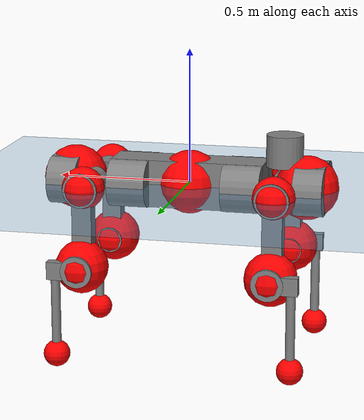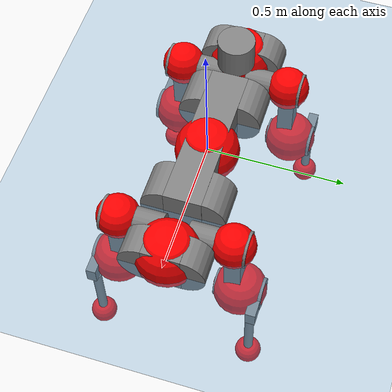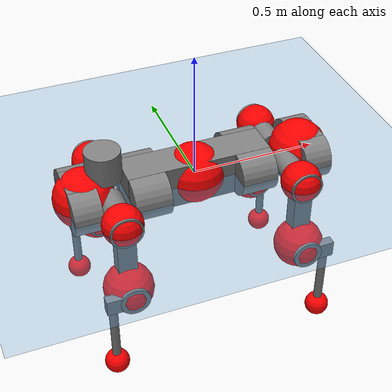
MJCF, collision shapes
<mujoco model="anymal_c">
  <compiler angle="radian" assetdir="assets" balanceinertia="true" inertiafromgeom="false"/>

  <option timestep="0.005" density="1.2" viscosity="2e-05"/>

  <size nkey="1"/>

  <visual>
    <quality shadowsize="8192"/>
    <map shadowclip="0.5"/>
  </visual>

  <default>
    <default class="/">
      <material specular="0" shininess="0.25"/>
      <geom contype="0" conaffinity="0" group="1" solref="-1000 -80"/>
      <site size="0.01 0.005 0.005" group="5"/>
      <general forcelimited="true" forcerange="-80 80" biastype="affine" gainprm="80" biasprm="0 -80 -2"/>
      <default class="anymal_c">
        <joint armature="0.01" damping="0.01" frictionloss="0.1"/>
        <default class="visual">
          <geom type="mesh" group="2"/>
          <default class="visual_zflip"/>
        </default>
        <default class="collision">
          <geom type="cylinder" group="3"/>
          <default class="foot">
            <geom size="0.03 0 0" type="sphere" condim="6" priority="1" friction="0.8 0.02 0.01" solimp="0.015 1 0.03"/>
          </default>
        </default>
      </default>
      <default class="reward_collision_sphere">
        <geom group="5" rgba="1 0 0 1"/>
      </default>
    </default>
  </default>

  <asset>
    <texture type="skybox" colorspace="auto" name="//unnamed_texture_0" builtin="gradient" rgb1="0.95 0.95 0.95" rgb2="0.95 0.95 0.95" width="100" height="600"/>
    <texture type="2d" colorspace="auto" name="texplane" builtin="checker" rgb1="0.345 0.575 0.748" rgb2="0.345 0.575 0.748" markrgb="1 1 1" width="512" height="512"/>
    <texture type="2d" colorspace="linear" name="base" file="base.png"/>
    <texture type="2d" colorspace="linear" name="top_shell" file="top_shell.png"/>
    <texture type="2d" colorspace="linear" name="bottom_shell" file="bottom_shell.png"/>
    <texture type="2d" colorspace="linear" name="remote" file="remote.png"/>
    <texture type="2d" colorspace="linear" name="hatch" file="hatch.png"/>
    <texture type="2d" colorspace="linear" name="handle" file="handle.png"/>
    <texture type="2d" colorspace="linear" name="face" file="face.png"/>
    <texture type="2d" colorspace="linear" name="battery" file="battery.png"/>
    <texture type="2d" colorspace="linear" name="lidar_cage" file="lidar_cage.png"/>
    <texture type="2d" colorspace="linear" name="depth_camera" file="depth_camera.png"/>
    <texture type="2d" colorspace="linear" name="wide_angle_camera" file="wide_angle_camera.png"/>
    <texture type="2d" colorspace="linear" name="lidar" file="lidar.png"/>
    <texture type="2d" colorspace="linear" name="drive" file="drive.png"/>
    <texture type="2d" colorspace="linear" name="hip_l" file="hip_l.png"/>
    <texture type="2d" colorspace="linear" name="shank_l" file="shank_l.png"/>
    <texture type="2d" colorspace="linear" name="foot" file="foot.png"/>
    <texture type="2d" colorspace="linear" name="thigh" file="thigh.png"/>
    <texture type="2d" colorspace="linear" name="shank_r" file="shank_r.png"/>
    <texture type="2d" colorspace="linear" name="hip_r" file="hip_r.png"/>
    <material name="MatPlane" class="/" texture="texplane" texuniform="true" texrepeat="2 2" specular="0.9" shininess="0.5"/>
    <material name="black_plastic" class="/" rgba="0.007 0.007 0.007 1"/>
    <material name="green" class="/" rgba="0.052 0.178 0.033 1"/>
    <material name="red" class="/" rgba="0.178 0.006 0.005 1"/>
    <material name="yellow" class="/" rgba="0.178 0.119 0.006 1"/>
    <material name="lwl" class="/" rgba="0.8 0.8 0.8 1"/>
    <material name="base" class="/" texture="base"/>
    <material name="top_shell" class="/" texture="top_shell"/>
    <material name="bottom_shell" class="/" texture="bottom_shell"/>
    <material name="hip_l" class="/" texture="hip_l"/>
    <material name="thigh" class="/" texture="thigh"/>
    <material name="shank_l" class="/" texture="shank_l"/>
    <material name="foot" class="/" texture="foot"/>
    <material name="hip_r" class="/" texture="hip_r"/>
    <material name="shank" class="/" texture="shank_r"/>
    <material name="hatch" class="/" texture="hatch"/>
    <material name="remote" class="/" texture="remote"/>
    <material name="handle" class="/" texture="handle"/>
    <material name="face" class="/" texture="face"/>
    <material name="depth_camera" class="/" texture="depth_camera"/>
    <material name="wide_angle_camera" class="/" texture="wide_angle_camera"/>
    <material name="battery" class="/" texture="battery"/>
    <material name="lidar_cage" class="/" texture="lidar_cage"/>
    <material name="lidar" class="/" texture="lidar"/>
    <material name="drive" class="/" texture="drive"/>
    <mesh name="base_0" class="/" file="base_0.obj"/>
    <mesh name="base_1" class="/" file="base_1.obj"/>
    <mesh name="base_2" class="/" file="base_2.obj"/>
    <mesh name="base_3" class="/" file="base_3.obj"/>
    <mesh name="base_4" class="/" file="base_4.obj"/>
    <mesh name="base_5" class="/" file="base_5.obj"/>
    <mesh name="top_shell" class="/" file="top_shell.obj"/>
    <mesh name="bottom_shell" class="/" file="bottom_shell.obj"/>
    <mesh name="remote" class="/" file="remote.obj"/>
    <mesh name="handle" class="/" file="handle.obj"/>
    <mesh name="face" class="/" file="face.obj"/>
    <mesh name="wide_angle_camera" class="/" file="wide_angle_camera.obj"/>
    <mesh name="depth_camera" class="/" file="depth_camera.obj"/>
    <mesh name="battery" class="/" file="battery.obj"/>
    <mesh name="lidar_cage" class="/" file="lidar_cage.obj"/>
    <mesh name="lidar" class="/" file="lidar.obj"/>
    <mesh name="drive" class="/" file="drive.obj"/>
    <mesh name="hip_l" class="/" file="hip_l.obj"/>
    <mesh name="thigh" class="/" file="thigh.obj"/>
    <mesh name="shank_l" class="/" file="shank_l.obj"/>
    <mesh name="foot" class="/" file="foot.obj"/>
    <mesh name="hip_r" class="/" file="hip_r.obj"/>
    <mesh name="hatch" class="/" file="hatch.obj"/>
    <mesh name="shank_r" class="/" file="shank_r.obj"/>
  </asset>

  <worldbody>
    <geom name="floor" class="/" size="100 100 0.125" type="plane" group="0" material="MatPlane"/>
    <light name="toplight_shadow" class="/" pos="0 0 5" dir="0.0990148 0.0990148 -0.990148" type="directional" ambient="0.04 0.04 0.04" diffuse="0.55 0.55 0.55" specular="0.12 0.12 0.12"/>
    <light name="toplight_fill" class="/" pos="0 0 5" dir="0.0990148 0.0990148 -0.990148" type="directional" castshadow="false" ambient="0.04 0.04 0.04" diffuse="0.3 0.3 0.3" specular="0.08 0.08 0.08"/>
    <body name="trunk" childclass="anymal_c" pos="-0.000215598 -0.000849056 0.000507942" quat="1 -2.10646e-07 -2.62542e-06 7.9536e-06">
      <inertial pos="0.00168245 -0.00135186 0.0507429" quat="0.508448 0.493122 0.495654 0.502631" mass="18.0155" diaginertia="0.576055 0.491413 0.23742"/>
      <joint name="//unnamed_joint_0" type="free" armature="0" damping="0" frictionloss="0"/>
      <geom name="//unnamed_geom_1" class="visual" material="green" mesh="base_0"/>
      <geom name="//unnamed_geom_2" class="visual" material="yellow" mesh="base_1"/>
      <geom name="//unnamed_geom_3" class="visual" material="red" mesh="base_2"/>
      <geom name="//unnamed_geom_4" class="visual" material="black_plastic" mesh="base_3"/>
      <geom name="//unnamed_geom_5" class="visual" material="lwl" mesh="base_4"/>
      <geom name="//unnamed_geom_6" class="visual" material="base" mesh="base_5"/>
      <geom name="trunk_1" class="collision" size="0.285866 0.069002 0.0887169" type="box"/>
      <geom name="trunk_2" class="collision" size="0.0887169 0.0714664" pos="0.21352 0.0667158 0" quat="0.707107 0 0.707107 0"/>
      <geom name="trunk_3" class="collision" size="0.0887169 0.0714664" pos="-0.21352 0.0667158 0" quat="0.707107 0 0.707107 0"/>
      <geom name="trunk_4" class="collision" size="0.0887169 0.0714664" pos="0.21352 -0.0667158 0" quat="0.707107 0 0.707107 0"/>
      <geom name="trunk_5" class="collision" size="0.0887169 0.0714664" pos="-0.21352 -0.0667158 0" quat="0.707107 0 0.707107 0"/>
      <geom name="//unnamed_geom_12" class="visual" material="top_shell" mesh="top_shell"/>
      <geom name="//unnamed_geom_13" class="visual" material="bottom_shell" mesh="bottom_shell"/>
      <geom name="//unnamed_geom_14" class="visual" material="remote" mesh="remote"/>
      <geom name="//unnamed_geom_15" class="visual" material="handle" mesh="handle"/>
      <geom name="//unnamed_geom_16" class="visual" pos="0.406916 0 0" quat="1 0 0 0" material="face" mesh="face"/>
      <geom name="trunk_6" class="collision" size="0.0542159 0.069002 0.0887169" pos="0.460909 0 0" type="box"/>
      <geom name="//unnamed_geom_18" class="collision" size="0.0887169 0.0542159" pos="0.460909 0.0667158 0" quat="0.707107 0 0.707107 0"/>
      <geom name="//unnamed_geom_19" class="collision" size="0.0887169 0.0542159" pos="0.460909 -0.0667158 0" quat="0.707107 0 0.707107 0"/>
      <geom name="//unnamed_geom_20" class="visual" pos="0.453205 0 -0.030165" quat="0.965926 0 0.258819 0" material="depth_camera" mesh="depth_camera"/>
      <geom name="//unnamed_geom_21" class="visual" pos="0.503613 0 0.015306" material="wide_angle_camera" mesh="wide_angle_camera"/>
      <geom name="//unnamed_geom_22" class="visual_zflip" pos="-0.406916 0 0" quat="0 0 0 1" material="face" mesh="face"/>
      <geom name="trunk_7" class="collision" size="0.0542159 0.069002 0.0887169" pos="-0.460909 0 0" quat="0 0 0 1" type="box"/>
      <geom name="//unnamed_geom_24" class="collision" size="0.0887169 0.0542159" pos="-0.460909 -0.0667158 0" quat="0 -0.707107 0 0.707107"/>
      <geom name="//unnamed_geom_25" class="collision" size="0.0887169 0.0542159" pos="-0.460909 0.0667158 0" quat="0 -0.707107 0 0.707107"/>
      <geom name="//unnamed_geom_26" class="visual" pos="-0.453205 0 -0.030165" quat="0 -0.258819 0 0.965926" material="depth_camera" mesh="depth_camera"/>
      <geom name="//unnamed_geom_27" class="visual_zflip" pos="-0.503613 0 0.015306" quat="0 0 0 1" material="wide_angle_camera" mesh="wide_angle_camera"/>
      <geom name="//unnamed_geom_28" class="visual" material="battery" mesh="battery"/>
      <geom name="//unnamed_geom_29" class="visual" pos="0 0.0724988 0.0293924" quat="0.683013 -0.183013 0.183013 0.683013" material="depth_camera" mesh="depth_camera"/>
      <geom name="//unnamed_geom_30" class="visual" pos="0 -0.0724988 0.0293924" quat="0.683013 0.183013 0.183013 -0.683013" material="depth_camera" mesh="depth_camera"/>
      <geom name="//unnamed_geom_31" class="visual" pos="-0.35734 0 0.0751497" quat="1 0 0 0" material="lidar_cage" mesh="lidar_cage"/>
      <geom name="trunk_8" class="collision" size="0.069002 0.0591446" pos="-0.35734 0 0.136496"/>
      <geom name="//unnamed_geom_33" class="visual" pos="-0.35734 -1.1244e-05 0.145392" quat="0.707107 0 0 -0.707107" material="lidar" mesh="lidar"/>
      <geom name="//unnamed_geom_34" class="visual" pos="0.294413 0.0991452 -1.1965e-09" quat="0.258819 0.965926 0 0" material="drive" mesh="drive"/>
      <geom name="//unnamed_geom_35" class="visual" pos="0.294413 -0.0991452 1.1965e-09" quat="0.258819 -0.965926 0 0" material="drive" mesh="drive"/>
      <geom name="//unnamed_geom_36" class="visual" pos="-0.294413 0.0991452 1.1965e-09" quat="0 0 0.965926 -0.258819" material="drive" mesh="drive"/>
      <geom name="//unnamed_geom_37" class="visual" pos="-0.294413 -0.0991452 -1.1965e-09" quat="0 0 -0.965926 -0.258819" material="drive" mesh="drive"/>
      <geom name="//unnamed_geom_38" class="visual" pos="0.113877 0 0.0746385" quat="1 0 0 0" material="hatch" mesh="hatch"/>
      <geom name="//unnamed_geom_39" class="reward_collision_sphere" size="0.118289"/>
      <geom name="//unnamed_geom_40" class="reward_collision_sphere" size="0.118289" pos="0.441766 0 0"/>
      <geom name="//unnamed_geom_41" class="reward_collision_sphere" size="0.118289" pos="-0.441766 0 0"/>
      <site name="imu" pos="0.247666 0.00559815 0.0431128" size="0.00985743"/>
      <camera name="track" pos="0 -1.90617 0" quat="0.707107 0.707107 0 0" mode="trackcom"/>
      <camera name="ego_camera" pos="0.441766 0 -0.0408978" quat="-0.5 -0.5 0.5 0.5"/>
      <body name="LF_HIP" pos="0.294967 0.101984 0.00173731" quat="0.259182 0.965829 -0.000268532 -1.35269e-05">
        <inertial pos="0.05528 -0.0144299 -0.0092116" quat="-0.126287 0.709163 -0.137254 0.679927" mass="2.64643" diaginertia="0.00533409 0.00383429 0.0037043"/>
        <joint name="LF_HAA" pos="0 0 0" axis="0.999999 0.00159154 0.000460531" range="-0.671809 0.474034" armature="0.00978493" damping="0.00322786" frictionloss="0.0991783"/>
        <geom name="//unnamed_geom_42" class="visual" pos="0 -7.03849e-05 1.15607e-05" quat="0.258819 -0.965926 0 0" material="hip_l" mesh="hip_l"/>
        <geom name="//unnamed_geom_43" class="visual" pos="0.058804 -0.0709014 -0.041448" quat="0.183013 -0.683013 0.683013 0.183013" material="drive" mesh="drive"/>
        <geom name="//unnamed_geom_44" class="collision" size="0.0492872 0.069002" pos="0.058804 -0.0113987 -0.00705998" quat="-0.353553 -0.612372 0.612372 -0.353553"/>
        <body name="LF_THIGH" pos="0.0592205 -0.0674118 -0.0426833" quat="0.182987 -0.68301 0.683082 0.18279">
          <inertial pos="0.0309153 -0.000207398 -0.250841" quat="0.992325 -0.0055077 -0.0873231 0.0873814" mass="2.94118" diaginertia="0.0277622 0.0234759 0.00472479"/>
          <joint name="LF_HFE" pos="0 0 0" axis="0.999984 -0.00506791 -0.00238076" range="-3.16145 3.1764" armature="0.0104246" damping="0.00593099" frictionloss="0.093569"/>
          <geom name="//unnamed_geom_45" class="visual" pos="0.000569425 8.97281e-07 0" quat="0.707107 0 0 -0.707107" material="thigh" mesh="thigh"/>
          <geom name="//unnamed_geom_46" class="collision" size="0.0640733 0.0394297" pos="0.0392681 0 0" quat="0.5 0.5 -0.5 -0.5"/>
          <geom name="//unnamed_geom_47" class="collision" size="0.0369654 0.0295723 0.139299" pos="0.0294511 0 -0.144486" quat="0.707107 0 0 -0.707107" type="box"/>
          <geom name="//unnamed_geom_48" class="visual" pos="0.0984648 0 -0.291397" quat="1 0 0 0" material="drive" mesh="drive"/>
          <geom name="//unnamed_geom_49" class="collision" size="0.0492872 0.069002" pos="0.0297456 0 -0.291397" quat="0.707107 0 0.707107 0"/>
          <geom name="//unnamed_geom_50" class="reward_collision_sphere" size="0.0788595" pos="0.0245426 0 0"/>
          <body name="LF_SHANK" pos="0.0998591 -0.00223291 -0.290987" quat="1 0.000213349 3.73882e-05 6.1905e-05">
            <inertial pos="0.00535964 -0.058422 -0.0847221" quat="0.99288 -0.116176 -0.00179031 -0.0262418" mass="0.561287" diaginertia="0.00920216 0.00746785 0.00122012"/>
            <joint name="LF_KFE" pos="0 0 0" axis="0.999996 -0.0021736 0.00157278" range="-3.18419 3.13821" armature="0.00998193" damping="0.0100576" frictionloss="0.0990421"/>
            <geom name="//unnamed_geom_51" class="visual" pos="0.000185677 0.00099004 0" quat="0.707107 0 0 -0.707107" material="shank_l" mesh="shank_l"/>
            <geom name="LF_kfe_act" class="collision" size="0.0591446 0.0197149" pos="0.0196341 0 0" quat="0.5 0.5 -0.5 -0.5"/>
            <geom name="//unnamed_geom_53" class="collision" size="0.0566793 0.0332688 0.0187291" pos="0.0196341 -0.0548013 0" quat="0.5 0.5 -0.5 -0.5" type="box"/>
            <geom name="//unnamed_geom_54" class="visual" pos="0.0128112 -0.0835046 -0.345556" quat="0.382683 0 0 -0.92388" material="foot" mesh="foot"/>
            <geom name="LF_calf" class="collision" size="0.0172505 0.139238" pos="0.0128112 -0.0838236 -0.172778" quat="0.707107 0 0 -0.707107"/>
            <geom name="LF_foot" class="foot" size="0.0301314" pos="0.0128112 -0.0838236 -0.322551" quat="0.707107 0 0 -0.707107"/>
            <geom name="//unnamed_geom_57" class="reward_collision_sphere" size="0.0985743" pos="-0.0490851 0 0"/>
            <geom name="//unnamed_geom_58" class="reward_collision_sphere" size="0.0492872" pos="0.0128112 -0.0838236 -0.322551"/>
            <site name="LF_foot" class="foot" pos="0.0128112 -0.0838236 -0.322551" quat="0.707107 0 0 -0.707107" size="0.00985743"/>
          </body>
        </body>
      </body>
      <body name="RF_HIP" pos="0.294997 -0.09951 0.00131829" quat="0.258791 -0.965933 3.99689e-06 -0.00018253">
        <inertial pos="0.0567591 0.0144437 -0.00895797" quat="0.134935 0.678817 0.12714 0.710518" mass="2.62637" diaginertia="0.00543028 0.00377507 0.00374429"/>
        <joint name="RF_HAA" pos="0 0 0" axis="0.999997 0.00220729 0.00109447" range="-0.496018 0.727544" armature="0.00941859" damping="0.00517386" frictionloss="0.0936926"/>
        <geom name="//unnamed_geom_59" class="visual" pos="0 7.03844e-05 1.15606e-05" quat="0.258819 0.965926 0 0" material="hip_r" mesh="hip_r"/>
        <geom name="//unnamed_geom_60" class="visual" pos="0.058804 0.0709014 -0.041448" quat="0.183013 0.683013 0.683013 -0.183013" material="drive" mesh="drive"/>
        <geom name="//unnamed_geom_61" class="collision" size="0.0492872 0.069002" pos="0.058804 0.0113987 -0.00705998" quat="-0.353553 0.612372 0.612372 0.353553"/>
        <body name="RF_THIGH" pos="0.0610402 0.0715775 -0.0435751" quat="0.182759 0.682865 0.683222 -0.183039">
          <inertial pos="0.0311594 -0.00234126 -0.251121" quat="0.992704 -0.00394758 -0.0814659 0.0888097" mass="3.00072" diaginertia="0.0281589 0.0238619 0.00480778"/>
          <joint name="RF_HFE" pos="0 0 0" axis="0.999994 -0.000538949 -0.00341584" range="-3.18272 3.14104" armature="0.0101274" damping="0.00694074" frictionloss="0.0983013"/>
          <geom name="//unnamed_geom_62" class="visual" pos="0.000569425 8.97281e-07 0" quat="0.707107 0 0 -0.707107" material="thigh" mesh="thigh"/>
          <geom name="//unnamed_geom_63" class="collision" size="0.0640733 0.0394297" pos="0.0392681 0 0" quat="0.5 0.5 0.5 0.5"/>
          <geom name="//unnamed_geom_64" class="collision" size="0.0369654 0.0295723 0.139299" pos="0.0294511 0 -0.144486" quat="0.707107 0 0 0.707107" type="box"/>
          <geom name="//unnamed_geom_65" class="visual" pos="0.0984648 0 -0.291397" quat="1 0 0 0" material="drive" mesh="drive"/>
          <geom name="//unnamed_geom_66" class="collision" size="0.0492872 0.069002" pos="0.0297456 0 -0.291397" quat="0.707107 0 0.707107 0"/>
          <geom name="//unnamed_geom_67" class="reward_collision_sphere" size="0.0788595" pos="0.0245426 0 0"/>
          <body name="RF_SHANK" pos="0.0964302 0.000781848 -0.291479" quat="1 -0.000556109 -0.000494414 6.51096e-05">
            <inertial pos="0.00450767 0.0586246 -0.0819747" quat="0.992912 0.11603 -0.00206402 0.025654" mass="0.566415" diaginertia="0.00922107 0.00726455 0.00123506"/>
            <joint name="RF_KFE" pos="0 0 0" axis="0.999922 0.00551138 -0.0112135" range="-3.13993 3.13858" armature="0.0107848" damping="0.0185605" frictionloss="0.0916419"/>
            <geom name="//unnamed_geom_68" class="visual" pos="0.000185676 -0.000990038 0" quat="0.707107 0 0 0.707107" material="shank" mesh="shank_r"/>
            <geom name="RF_kfe_act" class="collision" size="0.0591446 0.0197149" pos="0.0196341 0 0" quat="0.5 0.5 0.5 0.5"/>
            <geom name="//unnamed_geom_70" class="collision" size="0.0566793 0.0332688 0.0187291" pos="0.0196341 0.0548013 0" quat="0.5 0.5 0.5 0.5" type="box"/>
            <geom name="//unnamed_geom_71" class="visual" pos="0.0128113 0.0835046 -0.345556" quat="0.382683 0 0 0.92388" material="foot" mesh="foot"/>
            <geom name="RF_calf" class="collision" size="0.0172505 0.139238" pos="0.0128112 0.0838236 -0.172778" quat="0.707107 0 0 0.707107"/>
            <geom name="RF_foot" class="foot" size="0.0298058" pos="0.0128112 0.0838236 -0.322551" quat="0.707107 0 0 0.707107"/>
            <geom name="//unnamed_geom_74" class="reward_collision_sphere" size="0.0985743" pos="-0.0490851 0 0"/>
            <geom name="//unnamed_geom_75" class="reward_collision_sphere" size="0.0492872" pos="0.0128112 0.0838236 -0.322551"/>
            <site name="RF_foot" class="foot" pos="0.0128112 0.0838236 -0.322551" quat="0.707107 0 0 0.707107" size="0.00985743"/>
          </body>
        </body>
      </body>
      <body name="LH_HIP" pos="-0.293896 0.0994149 -0.00127846" quat="-3.74503e-05 8.34967e-05 0.966068 -0.258286">
        <inertial pos="0.0556829 0.0131284 -0.00914307" quat="0.135994 0.680216 0.131203 0.708236" mass="2.60387" diaginertia="0.00528244 0.00382318 0.00362518"/>
        <joint name="LH_HAA" pos="0 0 0" axis="0.999996 -0.000473328 0.00286231" stiffness="0.00211079" range="-0.497014 0.742588" armature="0.00979574" damping="0.0114578" frictionloss="0.0984211"/>
        <geom name="//unnamed_geom_76" class="visual" pos="0 7.03844e-05 1.15606e-05" quat="-0.258819 -0.965926 0 0" material="hip_r" mesh="hip_r"/>
        <geom name="//unnamed_geom_77" class="visual" pos="0.058804 0.0709014 -0.041448" quat="0.183013 0.683013 0.683013 -0.183013" material="drive" mesh="drive"/>
        <geom name="//unnamed_geom_78" class="collision" size="0.0492872 0.069002" pos="0.058804 0.0113987 -0.00705998" quat="-0.353553 0.612372 0.612372 0.353553"/>
        <body name="LH_THIGH" pos="0.05794 0.0682768 -0.0448065" quat="0.182972 0.683039 0.682981 -0.183071">
          <inertial pos="0.0303919 -0.000609177 -0.253066" quat="0.992904 -0.0066213 -0.0805415 0.0872363" mass="2.98828" diaginertia="0.0274398 0.0229164 0.00458602"/>
          <joint name="LH_HFE" pos="0 0 0" axis="0.999981 0.00336358 0.00513269" range="-3.16136 3.13543" armature="0.0103083" damping="0.000854095" frictionloss="0.0959852"/>
          <geom name="//unnamed_geom_79" class="visual" pos="0.000569425 8.97281e-07 0" quat="0.707107 0 0 -0.707107" material="thigh" mesh="thigh"/>
          <geom name="//unnamed_geom_80" class="collision" size="0.0640733 0.0394297" pos="0.0392681 0 0" quat="0.5 0.5 -0.5 -0.5"/>
          <geom name="//unnamed_geom_81" class="collision" size="0.0369654 0.0295723 0.139299" pos="0.0294511 0 -0.144486" quat="0.707107 0 0 -0.707107" type="box"/>
          <geom name="//unnamed_geom_82" class="visual" pos="0.0984648 0 -0.291397" quat="1 0 0 0" material="drive" mesh="drive"/>
          <geom name="//unnamed_geom_83" class="collision" size="0.0492872 0.069002" pos="0.0297456 0 -0.291397" quat="0.707107 0 0.707107 0"/>
          <geom name="//unnamed_geom_84" class="reward_collision_sphere" size="0.0788595" pos="0.0245426 0 0"/>
          <body name="LH_SHANK" pos="0.0985495 -0.00271384 -0.292957" quat="1 5.33895e-05 -8.93272e-05 -2.40261e-05">
            <inertial pos="0.00484923 0.058434 -0.0827233" quat="0.992938 0.115865 -0.0016068 0.0254503" mass="0.559943" diaginertia="0.0094081 0.00722313 0.00124352"/>
            <joint name="LH_KFE" pos="0 0 0" axis="0.999971 -0.00400697 -0.00643227" stiffness="0.000129976" range="-3.10079 3.12491" armature="0.00973181" damping="0.0128436" frictionloss="0.100167"/>
            <geom name="//unnamed_geom_85" class="visual" pos="0.000185676 -0.000990038 0" quat="-0.707107 0 0 -0.707107" material="shank" mesh="shank_r"/>
            <geom name="LH_kfe_act" class="collision" size="0.0591446 0.0197149" pos="0.0196341 0 0" quat="0.5 0.5 -0.5 -0.5"/>
            <geom name="//unnamed_geom_87" class="collision" size="0.0566793 0.0332688 0.0187291" pos="0.0196341 0.0548013 0" quat="0.5 0.5 -0.5 -0.5" type="box"/>
            <geom name="//unnamed_geom_88" class="visual" pos="0.0128113 0.0835046 -0.345556" quat="-0.382683 0 0 -0.92388" material="foot" mesh="foot"/>
            <geom name="LH_calf" class="collision" size="0.0172505 0.139238" pos="0.0128112 0.0838236 -0.172778" quat="0.707107 0 0 -0.707107"/>
            <geom name="LH_foot" class="foot" size="0.0300072" pos="0.0128112 0.0838236 -0.322551" quat="0.707107 0 0 -0.707107"/>
            <geom name="//unnamed_geom_91" class="reward_collision_sphere" size="0.0985743" pos="-0.0490851 0 0"/>
            <geom name="//unnamed_geom_92" class="reward_collision_sphere" size="0.0492872" pos="0.0128112 0.0838236 -0.322551"/>
            <site name="LH_foot" class="foot" pos="0.0128112 0.0838236 -0.322551" quat="0.707107 0 0 -0.707107" size="0.00985743"/>
          </body>
        </body>
      </body>
      <body name="RH_HIP" pos="-0.294949 -0.0989754 0.00135682" quat="-0.000313768 -0.00013559 -0.965827 -0.259186">
        <inertial pos="0.0549983 -0.0133189 -0.00880006" quat="-0.127863 0.708373 -0.136924 0.680522" mass="2.64798" diaginertia="0.00535733 0.00379715 0.00374257"/>
        <joint name="RH_HAA" pos="0 0 0" axis="0.999979 -0.00420562 -0.00489161" range="-0.732256 0.455882" armature="0.0098427" damping="0.010802" frictionloss="0.101285"/>
        <geom name="//unnamed_geom_93" class="visual" pos="0 -7.03849e-05 1.15607e-05" quat="-0.258819 0.965926 0 0" material="hip_l" mesh="hip_l"/>
        <geom name="//unnamed_geom_94" class="visual" pos="0.058804 -0.0709014 -0.041448" quat="-0.183013 0.683013 -0.683013 -0.183013" material="drive" mesh="drive"/>
        <geom name="//unnamed_geom_95" class="collision" size="0.0492872 0.069002" pos="0.058804 -0.0113987 -0.00705998" quat="0.353553 0.612372 -0.612372 0.353553"/>
        <body name="RH_THIGH" pos="0.0587242 -0.0683147 -0.0435208" quat="-0.182502 0.683701 -0.68251 -0.182828">
          <inertial pos="0.0305279 -0.00188334 -0.251232" quat="0.993095 -0.00396408 -0.0809588 0.0848033" mass="2.95243" diaginertia="0.027854 0.0235418 0.00469055"/>
          <joint name="RH_HFE" pos="0 0 0" axis="0.999962 0.00630279 -0.0060441" range="-3.14045 3.13671" armature="0.00976976" damping="0.00725417" frictionloss="0.0991024"/>
          <geom name="//unnamed_geom_96" class="visual" pos="0.000569425 8.97281e-07 0" quat="0.707107 0 0 -0.707107" material="thigh" mesh="thigh"/>
          <geom name="//unnamed_geom_97" class="collision" size="0.0640733 0.0394297" pos="0.0392681 0 0" quat="0.5 0.5 0.5 0.5"/>
          <geom name="//unnamed_geom_98" class="collision" size="0.0369654 0.0295723 0.139299" pos="0.0294511 0 -0.144486" quat="0.707107 0 0 0.707107" type="box"/>
          <geom name="//unnamed_geom_99" class="visual" pos="0.0984648 0 -0.291397" quat="1 0 0 0" material="drive" mesh="drive"/>
          <geom name="//unnamed_geom_100" class="collision" size="0.0492872 0.069002" pos="0.0297456 0 -0.291397" quat="0.707107 0 0.707107 0"/>
          <geom name="//unnamed_geom_101" class="reward_collision_sphere" size="0.0788595" pos="0.0245426 0 0"/>
          <body name="RH_SHANK" pos="0.0954793 0.000336879 -0.290502" quat="1 0.000208585 0.000238514 0.000468804">
            <inertial pos="0.00782592 -0.0581779 -0.0817272" quat="0.992527 -0.11876 -0.00467027 -0.027656" mass="0.560005" diaginertia="0.00945168 0.00731796 0.00124518"/>
            <joint name="RH_KFE" pos="0 0 0" axis="0.999993 -0.000258631 0.00382033" range="-3.14547 3.17371" armature="0.00900349" damping="0.00803247" frictionloss="0.0977032"/>
            <geom name="//unnamed_geom_102" class="visual" pos="0.000185677 0.00099004 0" quat="0.707107 0 0 -0.707107" material="shank_l" mesh="shank_l"/>
            <geom name="RH_kfe_act" class="collision" size="0.0591446 0.0197149" pos="0.0196341 0 0" quat="0.5 0.5 0.5 0.5"/>
            <geom name="//unnamed_geom_104" class="collision" size="0.0566793 0.0332688 0.0187291" pos="0.0196341 -0.0548013 0" quat="0.5 0.5 0.5 0.5" type="box"/>
            <geom name="//unnamed_geom_105" class="visual" pos="0.0128112 -0.0835046 -0.345556" quat="0.382683 0 0 -0.92388" material="foot" mesh="foot"/>
            <geom name="RH_calf" class="collision" size="0.0172505 0.139238" pos="0.0128112 -0.0838236 -0.172778" quat="0.707107 0 0 0.707107"/>
            <geom name="RH_foot" class="foot" size="0.0295065" pos="0.0128112 -0.0838236 -0.322551" quat="0.707107 0 0 0.707107"/>
            <geom name="//unnamed_geom_108" class="reward_collision_sphere" size="0.0985743" pos="-0.0490851 0 0"/>
            <geom name="//unnamed_geom_109" class="reward_collision_sphere" size="0.0492872" pos="0.0128112 -0.0838236 -0.322551"/>
            <site name="RH_foot" class="foot" pos="0.0128112 -0.0838236 -0.322551" quat="0.707107 0 0 0.707107" size="0.00985743"/>
          </body>
        </body>
      </body>
    </body>
  </worldbody>

  <contact>
    <pair class="/" geom1="floor" geom2="LF_foot" name="//unnamed_contact_0"/>
    <pair class="/" geom1="floor" geom2="RF_foot" name="//unnamed_contact_1"/>
    <pair class="/" geom1="floor" geom2="LH_foot" name="//unnamed_contact_2"/>
    <pair class="/" geom1="floor" geom2="RH_foot" name="//unnamed_contact_3"/>
  </contact>

  <actuator>
    <general name="LF_HAA" class="/" joint="LF_HAA" forcerange="-86.5365 86.5365" gainprm="82.2035" biasprm="0 -82.2035 -1.93709"/>
    <general name="LF_HFE" class="/" joint="LF_HFE" forcerange="-79.5394 79.5394" gainprm="82.2035" biasprm="0 -82.2035 -1.93709"/>
    <general name="LF_KFE" class="/" joint="LF_KFE" forcerange="-79.9236 79.9236" gainprm="82.2035" biasprm="0 -82.2035 -1.93709"/>
    <general name="RF_HAA" class="/" joint="RF_HAA" forcerange="-85.4457 85.4457" gainprm="82.2035" biasprm="0 -82.2035 -1.93709"/>
    <general name="RF_HFE" class="/" joint="RF_HFE" forcerange="-86.502 86.502" gainprm="82.2035" biasprm="0 -82.2035 -1.93709"/>
    <general name="RF_KFE" class="/" joint="RF_KFE" forcerange="-79.9024 79.9024" gainprm="82.2035" biasprm="0 -82.2035 -1.93709"/>
    <general name="LH_HAA" class="/" joint="LH_HAA" forcerange="-78.7182 78.7182" gainprm="82.2035" biasprm="0 -82.2035 -1.93709"/>
    <general name="LH_HFE" class="/" joint="LH_HFE" forcerange="-78.5917 78.5917" gainprm="82.2035" biasprm="0 -82.2035 -1.93709"/>
    <general name="LH_KFE" class="/" joint="LH_KFE" forcerange="-81.9391 81.9391" gainprm="82.2035" biasprm="0 -82.2035 -1.93709"/>
    <general name="RH_HAA" class="/" joint="RH_HAA" forcerange="-73.0544 73.0544" gainprm="82.2035" biasprm="0 -82.2035 -1.93709"/>
    <general name="RH_HFE" class="/" joint="RH_HFE" forcerange="-77.9623 77.9623" gainprm="82.2035" biasprm="0 -82.2035 -1.93709"/>
    <general name="RH_KFE" class="/" joint="RH_KFE" forcerange="-79.29 79.29" gainprm="82.2035" biasprm="0 -82.2035 -1.93709"/>
  </actuator>

  <sensor>
    <gyro site="imu" name="imu_angular_velocity"/>
    <velocimeter site="imu" name="imu_linear_velocity"/>
    <framelinvel objtype="site" objname="LF_foot" name="LF_foot_global_linear_velocity"/>
    <framelinvel objtype="site" objname="RF_foot" name="RF_foot_global_linear_velocity"/>
    <framelinvel objtype="site" objname="LH_foot" name="LH_foot_global_linear_velocity"/>
    <framelinvel objtype="site" objname="RH_foot" name="RH_foot_global_linear_velocity"/>
  </sensor>

  <keyframe>
    <key name="home" qpos="0 0 0.55 1 0 0 0 0 0.4 -0.8 0 -0.4 0.8 0 -0.4 0.8 0 0.4 -0.8"/>
  </keyframe>
</mujoco>
